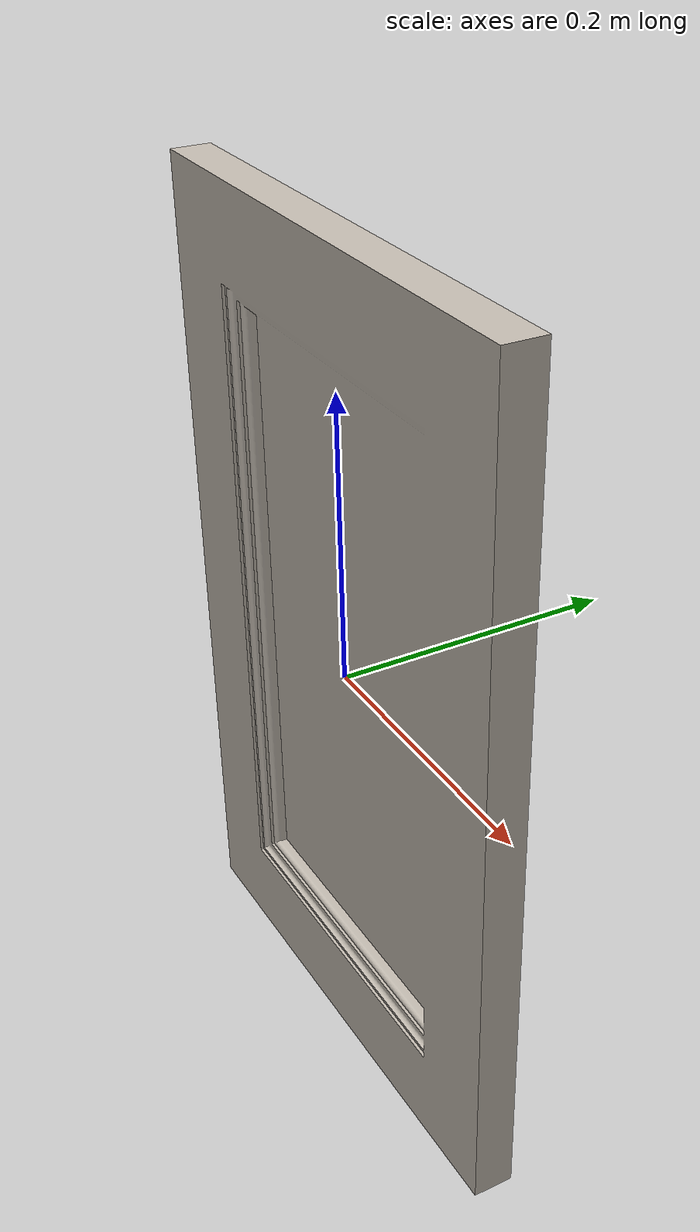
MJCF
<?xml version='1.0' encoding='UTF-8'?>
<mujoco model="model">
    <compiler angle="radian" />
    <asset>
        <mesh file="visuals/CabinetDoorPanel047.obj" name="mesh" />
        <texture file="visuals/T_BC001.png" name="tex" type="2d" />
        <material name="mat" rgba="1 1 1 1.0" texture="tex" shininess="0.5" specular="0.3103448502657381" />
    </asset>
    <default>
        <default class="visual">
            <geom conaffinity="0" contype="0" group="1" type="mesh" />
        </default>
        <default class="collision">
            <geom group="0" rgba="0 0 0 0" />
        </default>
        <default class="spawn">
            <geom group="0" rgba="0 0 0 0" contype="0" conaffinity="0" />
            <site group="0" rgba="0 0 0 0" />
        </default>
    <default class="region"><geom group="1" conaffinity="0" contype="0" rgba="0 0 0 0" /></default></default>
    <worldbody>
        <body>
            <body name="object">
                <geom class="region" type="box" pos="0.0 8.381903171539307e-08 -1.4901161193847656e-08" size="0.19741800022125244 0.02832840010523796 0.30008157682418823" quat="1.0 0.0 0.0 0.0" name="region_main" /><geom mesh="mesh" type="mesh" solimp="0.998 0.998 0.001" solref="0.001 1" density="100" friction="0.95 0.3 0.1" class="visual" material="mat" />
                <geom class="collision" type="box" pos="0.0 8.381903171539307e-08 -1.4901161193847656e-08" size="0.19541800022125244 0.01416420005261898 0.29808157682418823" quat="1.0 0.0 0.0 0.0" name="door" />
            </body>
        </body>
    </worldbody>
    <actuator />
</mujoco>
